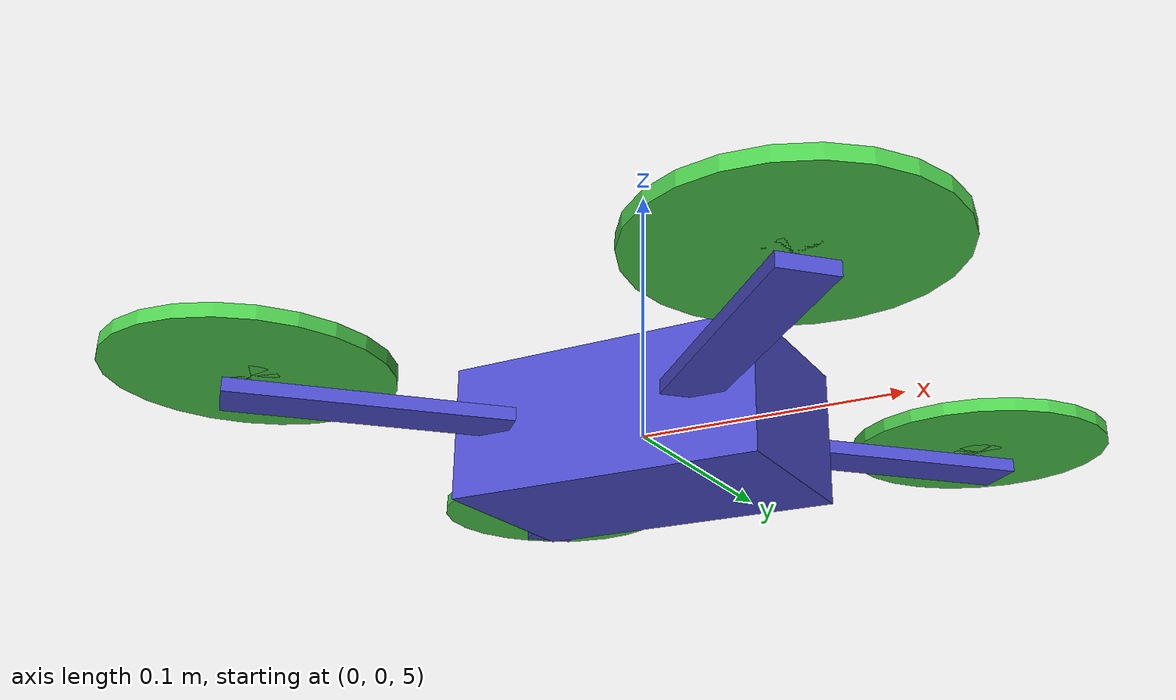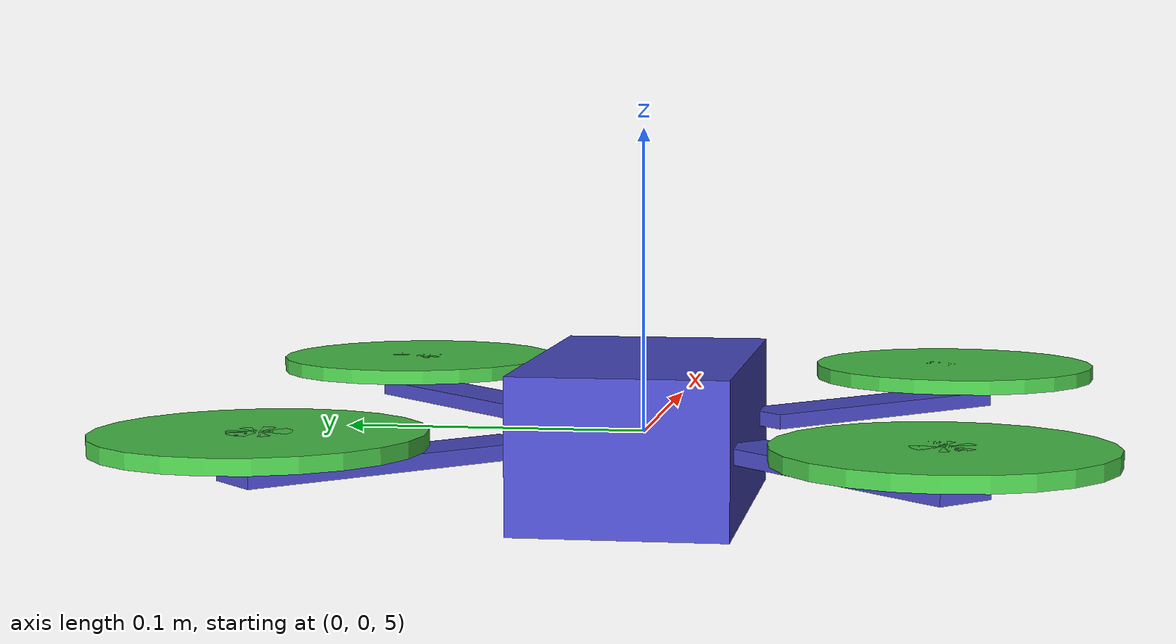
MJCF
<mujoco model="quadrotor0">
	<compiler inertiafromgeom="true" coordinate="local"/>
	<option	timestep="0.001" gravity="0 0 -9.81" density="1.225" viscosity="1.86e-5" />
  <asset>
    <texture builtin="gradient" height="100" rgb1="1 1 1" rgb2="0 0 0" type="skybox" width="100"/>
    <texture builtin="flat" height="1278" mark="cross" markrgb="1 1 1" name="texgeom" random="0.01" rgb1="0.8 0.6 0.4" rgb2="0.8 0.6 0.4" type="cube" width="127"/>
    <texture builtin="checker" height="100" name="texplane" rgb1="0 0 0" rgb2="0.8 0.8 0.8" type="2d" width="100"/>
    <material name="MatPlane" reflectance="0.5" shininess="1" specular="1" texrepeat="60 60" texture="texplane"/>
    <material name="geom" texture="texgeom" texuniform="true"/>
  </asset>
	<worldbody>
    <light cutoff="100" diffuse="1 1 1" dir="-0 0 -1.3" directional="true" exponent="1" pos="0 0 1.3" specular=".1 .1 .1"/>
    <geom conaffinity="1" condim="3" material="MatPlane" name="floor" pos="0 0 0" rgba="0.8 0.9 0.8 1" size="40 40 40" type="plane"/>

		<body name="quadrotor" pos="0 0 5." quat="0. 0. 0. 1.">
			<geom name="core" type="box" pos="0 0 0" quat = "1. 0. 0. 0." size="0.06 0.035 0.025"  rgba="0.3 0.3 0.8 1" mass = ".1"/>

			<geom name="a00" type="box" pos=".071 0.071 0.0" size="0.05 0.01 0.0025"  quat = ".924 0.0 0.0 0.383" rgba="0.3 0.3 0.8 1" mass = ".025"/>
			<geom name="a10" type="box" pos=".071 -0.071 0.0" size="0.05 0.01 0.0025"  quat = ".383 0.0 0.0 0.924" rgba="0.3 0.3 0.8 1" mass = ".025"/>
			<geom name="a20" type="box" pos="-0.071 -0.071 0.0" size="0.05 0.01 0.0025"  quat = "-.383 0.0 0.0 0.924" rgba="0.3 0.3 0.8 1" mass = ".025"/>
			<geom name="a30" type="box" pos="-.071 0.071 0.0" size="0.05 0.01 0.0025"  quat = ".924 0.0 0.0 -0.383" rgba="0.3 0.3 0.8 1" mass = ".025"/>

			<joint name="root"   type="free" damping="0" armature="0" pos="0 0 0"/>

			<!-- Motor sites to attach motor actuators --->
        <site name="motor0" type="cylinder" pos=" 0.1  0.1 0.01"  size="0.01 0.0025"  quat = "1.0 0.0 0.0 0." rgba="0.3 0.8 0.3 1"/>
        <site name="motor1" type="cylinder" pos=" 0.1 -0.1 0.01"  size="0.01 0.0025"  quat = "1.0 0.0 0.0 0." rgba="0.3 0.8 0.3 1"/>
        <site name="motor2" type="cylinder" pos="-0.1 -0.1 0.01"  size="0.01 0.0025"  quat = "1.0 0.0 0.0 0." rgba="0.3 0.8 0.3 1"/>
        <site name="motor3" type="cylinder" pos="-0.1  0.1 0.01"  size="0.01 0.0025"  quat = "1.0 0.0 0.0 0." rgba="0.3 0.8 0.3 1"/>

			<!-- Thruster geometries for collisions since site's are excluded from collision checking --->
        <geom name="thruster0" type="cylinder" pos=" 0.1  0.1  0.01" size="0.05 0.0025"  quat = "1.0 0.0 0.0 0." rgba="0.3 0.8 0.3 1" mass = ".025"/>
        <geom name="thruster1" type="cylinder" pos=" 0.1 -0.1  0.01" size="0.05 0.0025"  quat = "1.0 0.0 0.0 0." rgba="0.3 0.8 0.3 1" mass = ".025"/>
        <geom name="thruster2" type="cylinder" pos="-0.1 -0.1  0.01" size="0.05 0.0025"  quat = "1.0 0.0 0.0 0." rgba="0.3 0.8 0.3 1" mass = ".025"/>
        <geom name="thruster3" type="cylinder" pos="-0.1  0.1  0.01" size="0.05 0.0025"  quat = "1.0 0.0 0.0 0." rgba="0.3 0.8 0.3 1" mass = ".025"/>

            <!-- Visualization of the coordinate frame --->
		</body>
	</worldbody>
    <actuator>
				<motor ctrllimited="true" ctrlrange="-5.0 5.0" gear=".0  0. 0.5 0. 0. 0." site="motor0"/>
        <motor ctrllimited="true" ctrlrange="-5.0 5.0" gear=".0  0. 0.5 0. 0. 0." site="motor1"/>
        <motor ctrllimited="true" ctrlrange="-5.0 5.0" gear=".0  0. 0.5 0. 0. 0." site="motor2"/>
        <motor ctrllimited="true" ctrlrange="-5.0 5.0" gear=".0  0. 0.5 0. 0. 0." site="motor3"/>
	</actuator>
</mujoco>
